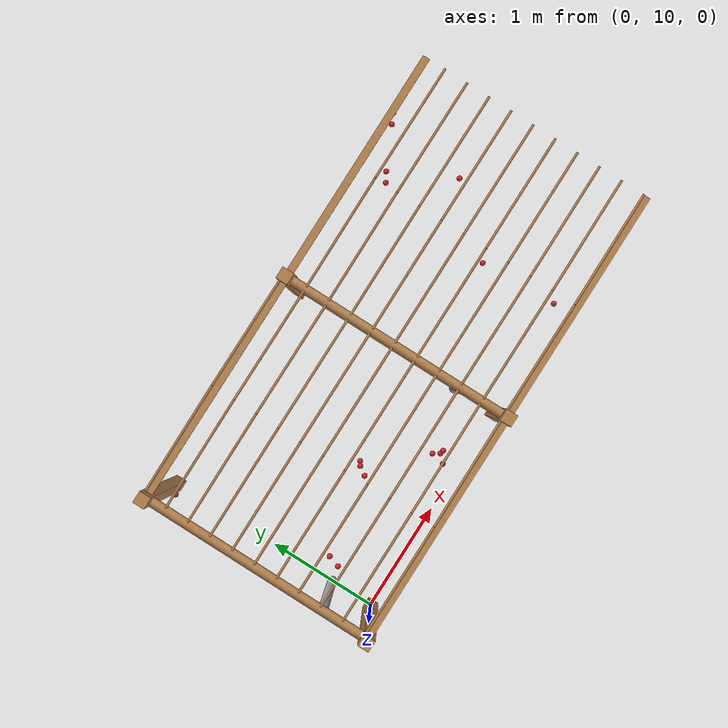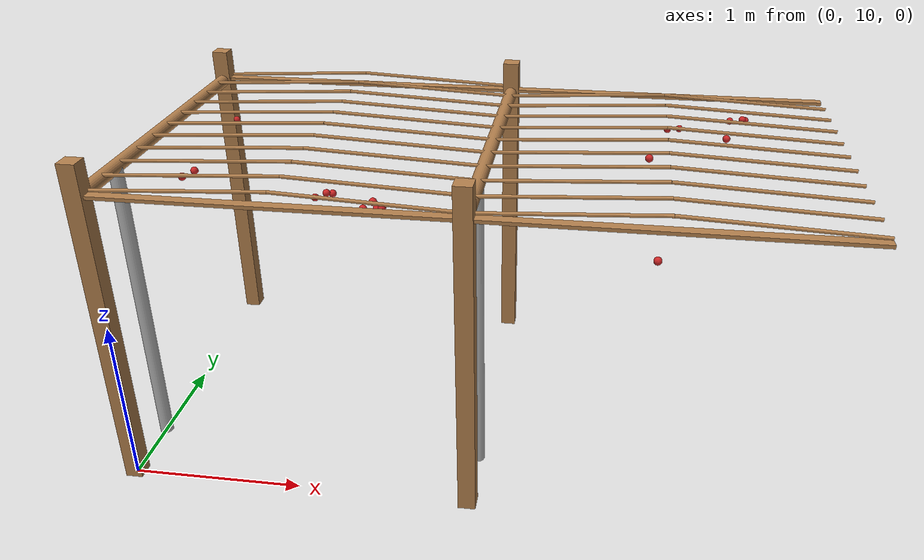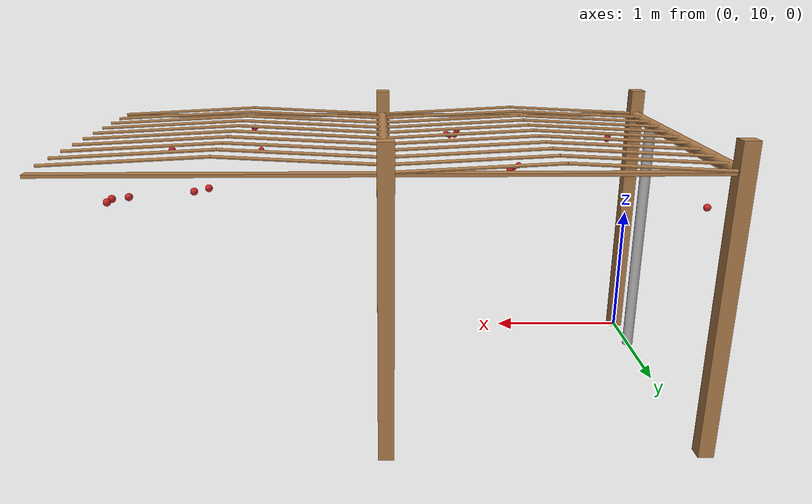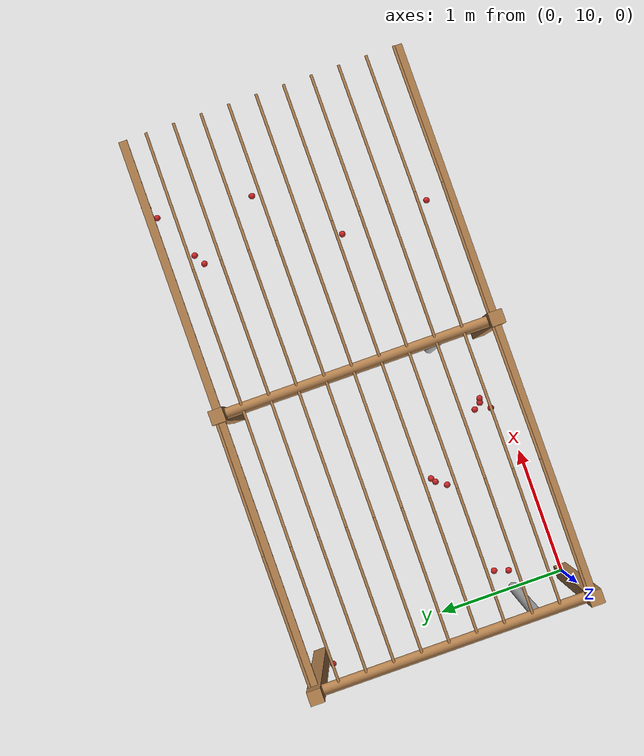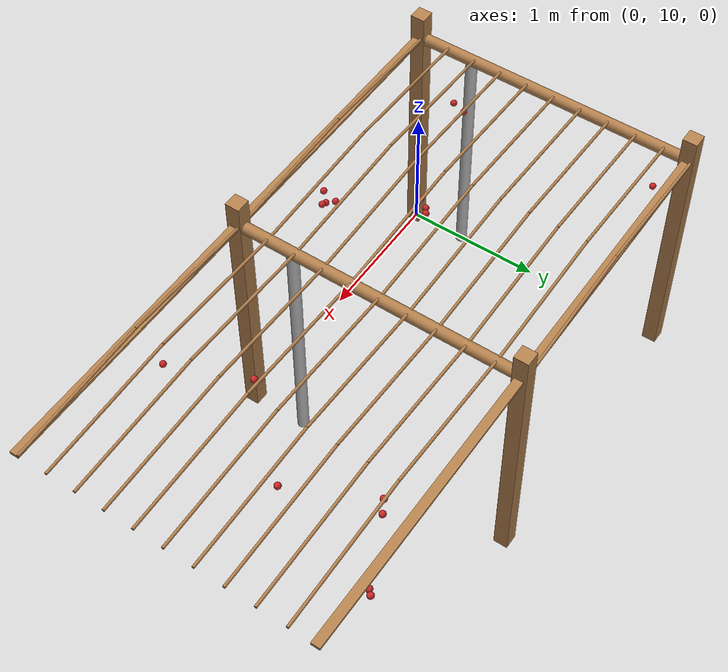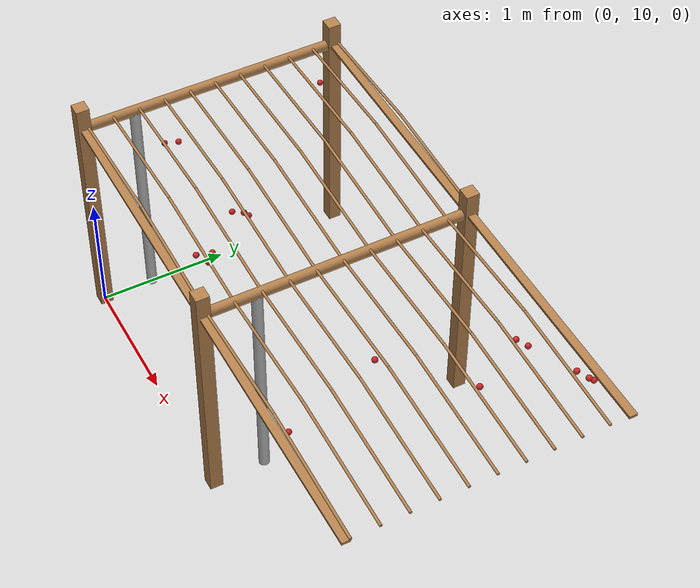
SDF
<sdf version="1.4">
 <model name="pergola">
  <include><name>post_5</name><pose>0.0 10.0 0 0 0 0</pose><uri>model://post</uri></include>
  <include><name>post_6</name><pose>0.0 12.0 0 0 0 0</pose><uri>model://post</uri></include>
  <include><name>post_16</name><pose>2.0 10.0 0 0 0 0</pose><uri>model://post</uri></include>
  <include><name>post_17</name><pose>2.0 12.0 0 0 0 0</pose><uri>model://post</uri></include>
  <link name="beam_5">
   <pose>1.0 10.0 1.81 0 0 0</pose>
   <collision name="collision"><geometry><box><size>2.0 0.06 0.02</size></box></geometry></collision>
   <visual name="visual">
    <geometry><box><size>2.0 0.06 0.02</size></box></geometry>
    <material><script><name>Gazebo/Wood</name></script></material>
   </visual>
   <inertial>
    <mass>5</mass>
    <inertia>
     <ixx>0.0016666666666666668</ixx>
     <ixy>0.0</ixy>
     <ixz>0.0</ixz>
     <iyy>1.6681666666666664</iyy>
     <iyz>0.0</iyz>
     <izz>1.6668333333333332</izz>
    </inertia>
   </inertial>
  </link>
  <link name="beam_6">
   <pose>1.0 12.0 1.81 0 0 0</pose>
   <collision name="collision"><geometry><box><size>2.0 0.06 0.02</size></box></geometry></collision>
   <visual name="visual">
    <geometry><box><size>2.0 0.06 0.02</size></box></geometry>
    <material><script><name>Gazebo/Wood</name></script></material>
   </visual>
   <inertial>
    <mass>5</mass>
    <inertia>
     <ixx>0.0016666666666666668</ixx>
     <ixy>0.0</ixy>
     <ixz>0.0</ixz>
     <iyy>1.6681666666666664</iyy>
     <iyz>0.0</iyz>
     <izz>1.6668333333333332</izz>
    </inertia>
   </inertial>
  </link>
  <link name="beam_16">
   <pose>3.0 10.0 1.81 0 0 0</pose>
   <collision name="collision"><geometry><box><size>2.0 0.06 0.02</size></box></geometry></collision>
   <visual name="visual">
    <geometry><box><size>2.0 0.06 0.02</size></box></geometry>
    <material><script><name>Gazebo/Wood</name></script></material>
   </visual>
   <inertial>
    <mass>5</mass>
    <inertia>
     <ixx>0.0016666666666666668</ixx>
     <ixy>0.0</ixy>
     <ixz>0.0</ixz>
     <iyy>1.6681666666666664</iyy>
     <iyz>0.0</iyz>
     <izz>1.6668333333333332</izz>
    </inertia>
   </inertial>
  </link>
  <link name="beam_17">
   <pose>3.0 12.0 1.81 0 0 0</pose>
   <collision name="collision"><geometry><box><size>2.0 0.06 0.02</size></box></geometry></collision>
   <visual name="visual">
    <geometry><box><size>2.0 0.06 0.02</size></box></geometry>
    <material><script><name>Gazebo/Wood</name></script></material>
   </visual>
   <inertial>
    <mass>5</mass>
    <inertia>
     <ixx>0.0016666666666666668</ixx>
     <ixy>0.0</ixy>
     <ixz>0.0</ixz>
     <iyy>1.6681666666666664</iyy>
     <iyz>0.0</iyz>
     <izz>1.6668333333333332</izz>
    </inertia>
   </inertial>
  </link>
  <include><name>tree_5</name><pose>0.0 10.4 0 0 0 0</pose><uri>model://tree_trunk</uri></include>
  <include><name>tree_15</name><pose>2.0 10.4 0 0 0 0</pose><uri>model://tree_trunk</uri></include>
  <link name="baseBranch_5">
   <pose>0.0 11.0 1.8 1.5707963267948966 0 0</pose>
   <collision name="collision">
    <geometry><cylinder><radius>0.04</radius><length>1.94</length></cylinder></geometry>
   </collision>
   <visual name="visual">
    <geometry><cylinder><radius>0.04</radius><length>1.94</length></cylinder></geometry>
    <material><script><name>Gazebo/WoodFloor</name></script></material>
   </visual>
   <inertial>
    <mass>10</mass>
    <inertia>
     <ixx>3.140333333333333</ixx>
     <ixy>0.0</ixy>
     <ixz>0.0</ixz>
     <iyy>3.140333333333333</iyy>
     <iyz>0.0</iyz>
     <izz>0.008</izz>
    </inertia>
   </inertial>
  </link>
  <link name="baseBranch_15">
   <pose>2.0 11.0 1.8 1.5707963267948966 0 0</pose>
   <collision name="collision">
    <geometry><cylinder><radius>0.04</radius><length>1.94</length></cylinder></geometry>
   </collision>
   <visual name="visual">
    <geometry><cylinder><radius>0.04</radius><length>1.94</length></cylinder></geometry>
    <material><script><name>Gazebo/WoodFloor</name></script></material>
   </visual>
   <inertial>
    <mass>10</mass>
    <inertia>
     <ixx>3.140333333333333</ixx>
     <ixy>0.0</ixy>
     <ixz>0.0</ixz>
     <iyy>3.140333333333333</iyy>
     <iyz>0.0</iyz>
     <izz>0.008</izz>
    </inertia>
   </inertial>
  </link>
  <link name="vine_100">
   <pose>0.5 10.03 1.85 0 1.5208379310729538 0</pose>
   <collision name="collision">
    <geometry><cylinder><radius>0.01</radius><length>1.0012492197250393</length></cylinder></geometry>
   </collision>
   <visual name="visual">
    <geometry><cylinder><radius>0.01</radius><length>1.0012492197250393</length></cylinder></geometry>
    <material><script><name>Gazebo/WoodFloor</name></script></material>
   </visual>
   <inertial>
    <mass>5</mass>
    <inertia>
     <ixx>0.41783333333333345</ixx>
     <ixy>0.0</ixy>
     <ixz>0.0</ixz>
     <iyy>0.41783333333333345</iyy>
     <iyz>0.0</iyz>
     <izz>0.00025</izz>
    </inertia>
   </inertial>
  </link>
  <link name="vine_101">
   <pose>1.5 10.03 1.85 0 -1.5208379310729538 0</pose>
   <collision name="collision">
    <geometry><cylinder><radius>0.01</radius><length>1.0012492197250393</length></cylinder></geometry>
   </collision>
   <visual name="visual">
    <geometry><cylinder><radius>0.01</radius><length>1.0012492197250393</length></cylinder></geometry>
    <material><script><name>Gazebo/WoodFloor</name></script></material>
   </visual>
   <inertial>
    <mass>5</mass>
    <inertia>
     <ixx>0.41783333333333345</ixx>
     <ixy>0.0</ixy>
     <ixz>0.0</ixz>
     <iyy>0.41783333333333345</iyy>
     <iyz>0.0</iyz>
     <izz>0.00025</izz>
    </inertia>
   </inertial>
  </link>
  <link name="vine_102">
   <pose>0.5 10.23 1.85 0 1.5208379310729538 0</pose>
   <collision name="collision">
    <geometry><cylinder><radius>0.01</radius><length>1.0012492197250393</length></cylinder></geometry>
   </collision>
   <visual name="visual">
    <geometry><cylinder><radius>0.01</radius><length>1.0012492197250393</length></cylinder></geometry>
    <material><script><name>Gazebo/WoodFloor</name></script></material>
   </visual>
   <inertial>
    <mass>5</mass>
    <inertia>
     <ixx>0.41783333333333345</ixx>
     <ixy>0.0</ixy>
     <ixz>0.0</ixz>
     <iyy>0.41783333333333345</iyy>
     <iyz>0.0</iyz>
     <izz>0.00025</izz>
    </inertia>
   </inertial>
  </link>
  <link name="vine_103">
   <pose>1.5 10.23 1.85 0 -1.5208379310729538 0</pose>
   <collision name="collision">
    <geometry><cylinder><radius>0.01</radius><length>1.0012492197250393</length></cylinder></geometry>
   </collision>
   <visual name="visual">
    <geometry><cylinder><radius>0.01</radius><length>1.0012492197250393</length></cylinder></geometry>
    <material><script><name>Gazebo/WoodFloor</name></script></material>
   </visual>
   <inertial>
    <mass>5</mass>
    <inertia>
     <ixx>0.41783333333333345</ixx>
     <ixy>0.0</ixy>
     <ixz>0.0</ixz>
     <iyy>0.41783333333333345</iyy>
     <iyz>0.0</iyz>
     <izz>0.00025</izz>
    </inertia>
   </inertial>
  </link>
  <link name="vine_104">
   <pose>0.5 10.43 1.85 0 1.5208379310729538 0</pose>
   <collision name="collision">
    <geometry><cylinder><radius>0.01</radius><length>1.0012492197250393</length></cylinder></geometry>
   </collision>
   <visual name="visual">
    <geometry><cylinder><radius>0.01</radius><length>1.0012492197250393</length></cylinder></geometry>
    <material><script><name>Gazebo/WoodFloor</name></script></material>
   </visual>
   <inertial>
    <mass>5</mass>
    <inertia>
     <ixx>0.41783333333333345</ixx>
     <ixy>0.0</ixy>
     <ixz>0.0</ixz>
     <iyy>0.41783333333333345</iyy>
     <iyz>0.0</iyz>
     <izz>0.00025</izz>
    </inertia>
   </inertial>
  </link>
  <link name="vine_105">
   <pose>1.5 10.43 1.85 0 -1.5208379310729538 0</pose>
   <collision name="collision">
    <geometry><cylinder><radius>0.01</radius><length>1.0012492197250393</length></cylinder></geometry>
   </collision>
   <visual name="visual">
    <geometry><cylinder><radius>0.01</radius><length>1.0012492197250393</length></cylinder></geometry>
    <material><script><name>Gazebo/WoodFloor</name></script></material>
   </visual>
   <inertial>
    <mass>5</mass>
    <inertia>
     <ixx>0.41783333333333345</ixx>
     <ixy>0.0</ixy>
     <ixz>0.0</ixz>
     <iyy>0.41783333333333345</iyy>
     <iyz>0.0</iyz>
     <izz>0.00025</izz>
    </inertia>
   </inertial>
  </link>
  <link name="vine_106">
   <pose>0.5 10.63 1.85 0 1.5208379310729538 0</pose>
   <collision name="collision">
    <geometry><cylinder><radius>0.01</radius><length>1.0012492197250393</length></cylinder></geometry>
   </collision>
   <visual name="visual">
    <geometry><cylinder><radius>0.01</radius><length>1.0012492197250393</length></cylinder></geometry>
    <material><script><name>Gazebo/WoodFloor</name></script></material>
   </visual>
   <inertial>
    <mass>5</mass>
    <inertia>
     <ixx>0.41783333333333345</ixx>
     <ixy>0.0</ixy>
     <ixz>0.0</ixz>
     <iyy>0.41783333333333345</iyy>
     <iyz>0.0</iyz>
     <izz>0.00025</izz>
    </inertia>
   </inertial>
  </link>
  <link name="vine_107">
   <pose>1.5 10.63 1.85 0 -1.5208379310729538 0</pose>
   <collision name="collision">
    <geometry><cylinder><radius>0.01</radius><length>1.0012492197250393</length></cylinder></geometry>
   </collision>
   <visual name="visual">
    <geometry><cylinder><radius>0.01</radius><length>1.0012492197250393</length></cylinder></geometry>
    <material><script><name>Gazebo/WoodFloor</name></script></material>
   </visual>
   <inertial>
    <mass>5</mass>
    <inertia>
     <ixx>0.41783333333333345</ixx>
     <ixy>0.0</ixy>
     <ixz>0.0</ixz>
     <iyy>0.41783333333333345</iyy>
     <iyz>0.0</iyz>
     <izz>0.00025</izz>
    </inertia>
   </inertial>
  </link>
  <link name="vine_108">
   <pose>0.5 10.83 1.85 0 1.5208379310729538 0</pose>
   <collision name="collision">
    <geometry><cylinder><radius>0.01</radius><length>1.0012492197250393</length></cylinder></geometry>
   </collision>
   <visual name="visual">
    <geometry><cylinder><radius>0.01</radius><length>1.0012492197250393</length></cylinder></geometry>
    <material><script><name>Gazebo/WoodFloor</name></script></material>
   </visual>
   <inertial>
    <mass>5</mass>
    <inertia>
     <ixx>0.41783333333333345</ixx>
     <ixy>0.0</ixy>
     <ixz>0.0</ixz>
     <iyy>0.41783333333333345</iyy>
     <iyz>0.0</iyz>
     <izz>0.00025</izz>
    </inertia>
   </inertial>
  </link>
  <link name="vine_109">
   <pose>1.5 10.83 1.85 0 -1.5208379310729538 0</pose>
   <collision name="collision">
    <geometry><cylinder><radius>0.01</radius><length>1.0012492197250393</length></cylinder></geometry>
   </collision>
   <visual name="visual">
    <geometry><cylinder><radius>0.01</radius><length>1.0012492197250393</length></cylinder></geometry>
    <material><script><name>Gazebo/WoodFloor</name></script></material>
   </visual>
   <inertial>
    <mass>5</mass>
    <inertia>
     <ixx>0.41783333333333345</ixx>
     <ixy>0.0</ixy>
     <ixz>0.0</ixz>
     <iyy>0.41783333333333345</iyy>
     <iyz>0.0</iyz>
     <izz>0.00025</izz>
    </inertia>
   </inertial>
  </link>
  <link name="vine_110">
   <pose>0.5 11.03 1.85 0 1.5208379310729538 0</pose>
   <collision name="collision">
    <geometry><cylinder><radius>0.01</radius><length>1.0012492197250393</length></cylinder></geometry>
   </collision>
   <visual name="visual">
    <geometry><cylinder><radius>0.01</radius><length>1.0012492197250393</length></cylinder></geometry>
    <material><script><name>Gazebo/WoodFloor</name></script></material>
   </visual>
   <inertial>
    <mass>5</mass>
    <inertia>
     <ixx>0.41783333333333345</ixx>
     <ixy>0.0</ixy>
     <ixz>0.0</ixz>
     <iyy>0.41783333333333345</iyy>
     <iyz>0.0</iyz>
     <izz>0.00025</izz>
    </inertia>
   </inertial>
  </link>
  <link name="vine_111">
   <pose>1.5 11.03 1.85 0 -1.5208379310729538 0</pose>
   <collision name="collision">
    <geometry><cylinder><radius>0.01</radius><length>1.0012492197250393</length></cylinder></geometry>
   </collision>
   <visual name="visual">
    <geometry><cylinder><radius>0.01</radius><length>1.0012492197250393</length></cylinder></geometry>
    <material><script><name>Gazebo/WoodFloor</name></script></material>
   </visual>
   <inertial>
    <mass>5</mass>
    <inertia>
     <ixx>0.41783333333333345</ixx>
     <ixy>0.0</ixy>
     <ixz>0.0</ixz>
     <iyy>0.41783333333333345</iyy>
     <iyz>0.0</iyz>
     <izz>0.00025</izz>
    </inertia>
   </inertial>
  </link>
  <link name="vine_112">
   <pose>0.5 11.23 1.85 0 1.5208379310729538 0</pose>
   <collision name="collision">
    <geometry><cylinder><radius>0.01</radius><length>1.0012492197250393</length></cylinder></geometry>
   </collision>
   <visual name="visual">
    <geometry><cylinder><radius>0.01</radius><length>1.0012492197250393</length></cylinder></geometry>
    <material><script><name>Gazebo/WoodFloor</name></script></material>
   </visual>
   <inertial>
    <mass>5</mass>
    <inertia>
     <ixx>0.41783333333333345</ixx>
     <ixy>0.0</ixy>
     <ixz>0.0</ixz>
     <iyy>0.41783333333333345</iyy>
     <iyz>0.0</iyz>
     <izz>0.00025</izz>
    </inertia>
   </inertial>
  </link>
  <link name="vine_113">
   <pose>1.5 11.23 1.85 0 -1.5208379310729538 0</pose>
   <collision name="collision">
    <geometry><cylinder><radius>0.01</radius><length>1.0012492197250393</length></cylinder></geometry>
   </collision>
   <visual name="visual">
    <geometry><cylinder><radius>0.01</radius><length>1.0012492197250393</length></cylinder></geometry>
    <material><script><name>Gazebo/WoodFloor</name></script></material>
   </visual>
   <inertial>
    <mass>5</mass>
    <inertia>
     <ixx>0.41783333333333345</ixx>
     <ixy>0.0</ixy>
     <ixz>0.0</ixz>
     <iyy>0.41783333333333345</iyy>
     <iyz>0.0</iyz>
     <izz>0.00025</izz>
    </inertia>
   </inertial>
  </link>
  <link name="vine_114">
   <pose>0.5 11.43 1.85 0 1.5208379310729538 0</pose>
   <collision name="collision">
    <geometry><cylinder><radius>0.01</radius><length>1.0012492197250393</length></cylinder></geometry>
   </collision>
   <visual name="visual">
    <geometry><cylinder><radius>0.01</radius><length>1.0012492197250393</length></cylinder></geometry>
    <material><script><name>Gazebo/WoodFloor</name></script></material>
   </visual>
   <inertial>
    <mass>5</mass>
    <inertia>
     <ixx>0.41783333333333345</ixx>
     <ixy>0.0</ixy>
     <ixz>0.0</ixz>
     <iyy>0.41783333333333345</iyy>
     <iyz>0.0</iyz>
     <izz>0.00025</izz>
    </inertia>
   </inertial>
  </link>
  <link name="vine_115">
   <pose>1.5 11.43 1.85 0 -1.5208379310729538 0</pose>
   <collision name="collision">
    <geometry><cylinder><radius>0.01</radius><length>1.0012492197250393</length></cylinder></geometry>
   </collision>
   <visual name="visual">
    <geometry><cylinder><radius>0.01</radius><length>1.0012492197250393</length></cylinder></geometry>
    <material><script><name>Gazebo/WoodFloor</name></script></material>
   </visual>
   <inertial>
    <mass>5</mass>
    <inertia>
     <ixx>0.41783333333333345</ixx>
     <ixy>0.0</ixy>
     <ixz>0.0</ixz>
     <iyy>0.41783333333333345</iyy>
     <iyz>0.0</iyz>
     <izz>0.00025</izz>
    </inertia>
   </inertial>
  </link>
  <link name="vine_116">
   <pose>0.5 11.63 1.85 0 1.5208379310729538 0</pose>
   <collision name="collision">
    <geometry><cylinder><radius>0.01</radius><length>1.0012492197250393</length></cylinder></geometry>
   </collision>
   <visual name="visual">
    <geometry><cylinder><radius>0.01</radius><length>1.0012492197250393</length></cylinder></geometry>
    <material><script><name>Gazebo/WoodFloor</name></script></material>
   </visual>
   <inertial>
    <mass>5</mass>
    <inertia>
     <ixx>0.41783333333333345</ixx>
     <ixy>0.0</ixy>
     <ixz>0.0</ixz>
     <iyy>0.41783333333333345</iyy>
     <iyz>0.0</iyz>
     <izz>0.00025</izz>
    </inertia>
   </inertial>
  </link>
  <link name="vine_117">
   <pose>1.5 11.63 1.85 0 -1.5208379310729538 0</pose>
   <collision name="collision">
    <geometry><cylinder><radius>0.01</radius><length>1.0012492197250393</length></cylinder></geometry>
   </collision>
   <visual name="visual">
    <geometry><cylinder><radius>0.01</radius><length>1.0012492197250393</length></cylinder></geometry>
    <material><script><name>Gazebo/WoodFloor</name></script></material>
   </visual>
   <inertial>
    <mass>5</mass>
    <inertia>
     <ixx>0.41783333333333345</ixx>
     <ixy>0.0</ixy>
     <ixz>0.0</ixz>
     <iyy>0.41783333333333345</iyy>
     <iyz>0.0</iyz>
     <izz>0.00025</izz>
    </inertia>
   </inertial>
  </link>
  <link name="vine_118">
   <pose>0.5 11.83 1.85 0 1.5208379310729538 0</pose>
   <collision name="collision">
    <geometry><cylinder><radius>0.01</radius><length>1.0012492197250393</length></cylinder></geometry>
   </collision>
   <visual name="visual">
    <geometry><cylinder><radius>0.01</radius><length>1.0012492197250393</length></cylinder></geometry>
    <material><script><name>Gazebo/WoodFloor</name></script></material>
   </visual>
   <inertial>
    <mass>5</mass>
    <inertia>
     <ixx>0.41783333333333345</ixx>
     <ixy>0.0</ixy>
     <ixz>0.0</ixz>
     <iyy>0.41783333333333345</iyy>
     <iyz>0.0</iyz>
     <izz>0.00025</izz>
    </inertia>
   </inertial>
  </link>
  <link name="vine_119">
   <pose>1.5 11.83 1.85 0 -1.5208379310729538 0</pose>
   <collision name="collision">
    <geometry><cylinder><radius>0.01</radius><length>1.0012492197250393</length></cylinder></geometry>
   </collision>
   <visual name="visual">
    <geometry><cylinder><radius>0.01</radius><length>1.0012492197250393</length></cylinder></geometry>
    <material><script><name>Gazebo/WoodFloor</name></script></material>
   </visual>
   <inertial>
    <mass>5</mass>
    <inertia>
     <ixx>0.41783333333333345</ixx>
     <ixy>0.0</ixy>
     <ixz>0.0</ixz>
     <iyy>0.41783333333333345</iyy>
     <iyz>0.0</iyz>
     <izz>0.00025</izz>
    </inertia>
   </inertial>
  </link>
  <link name="vine_120">
   <pose>0.5 12.03 1.85 0 1.5208379310729538 0</pose>
   <collision name="collision">
    <geometry><cylinder><radius>0.01</radius><length>1.0012492197250393</length></cylinder></geometry>
   </collision>
   <visual name="visual">
    <geometry><cylinder><radius>0.01</radius><length>1.0012492197250393</length></cylinder></geometry>
    <material><script><name>Gazebo/WoodFloor</name></script></material>
   </visual>
   <inertial>
    <mass>5</mass>
    <inertia>
     <ixx>0.41783333333333345</ixx>
     <ixy>0.0</ixy>
     <ixz>0.0</ixz>
     <iyy>0.41783333333333345</iyy>
     <iyz>0.0</iyz>
     <izz>0.00025</izz>
    </inertia>
   </inertial>
  </link>
  <link name="vine_121">
   <pose>1.5 12.03 1.85 0 -1.5208379310729538 0</pose>
   <collision name="collision">
    <geometry><cylinder><radius>0.01</radius><length>1.0012492197250393</length></cylinder></geometry>
   </collision>
   <visual name="visual">
    <geometry><cylinder><radius>0.01</radius><length>1.0012492197250393</length></cylinder></geometry>
    <material><script><name>Gazebo/WoodFloor</name></script></material>
   </visual>
   <inertial>
    <mass>5</mass>
    <inertia>
     <ixx>0.41783333333333345</ixx>
     <ixy>0.0</ixy>
     <ixz>0.0</ixz>
     <iyy>0.41783333333333345</iyy>
     <iyz>0.0</iyz>
     <izz>0.00025</izz>
    </inertia>
   </inertial>
  </link>
  <link name="vine_300">
   <pose>2.5 10.03 1.85 0 1.5208379310729538 0</pose>
   <collision name="collision">
    <geometry><cylinder><radius>0.01</radius><length>1.0012492197250393</length></cylinder></geometry>
   </collision>
   <visual name="visual">
    <geometry><cylinder><radius>0.01</radius><length>1.0012492197250393</length></cylinder></geometry>
    <material><script><name>Gazebo/WoodFloor</name></script></material>
   </visual>
   <inertial>
    <mass>5</mass>
    <inertia>
     <ixx>0.41783333333333345</ixx>
     <ixy>0.0</ixy>
     <ixz>0.0</ixz>
     <iyy>0.41783333333333345</iyy>
     <iyz>0.0</iyz>
     <izz>0.00025</izz>
    </inertia>
   </inertial>
  </link>
  <link name="vine_301">
   <pose>3.5 10.03 1.85 0 -1.5208379310729538 0</pose>
   <collision name="collision">
    <geometry><cylinder><radius>0.01</radius><length>1.0012492197250393</length></cylinder></geometry>
   </collision>
   <visual name="visual">
    <geometry><cylinder><radius>0.01</radius><length>1.0012492197250393</length></cylinder></geometry>
    <material><script><name>Gazebo/WoodFloor</name></script></material>
   </visual>
   <inertial>
    <mass>5</mass>
    <inertia>
     <ixx>0.41783333333333345</ixx>
     <ixy>0.0</ixy>
     <ixz>0.0</ixz>
     <iyy>0.41783333333333345</iyy>
     <iyz>0.0</iyz>
     <izz>0.00025</izz>
    </inertia>
   </inertial>
  </link>
  <link name="vine_302">
   <pose>2.5 10.23 1.85 0 1.5208379310729538 0</pose>
   <collision name="collision">
    <geometry><cylinder><radius>0.01</radius><length>1.0012492197250393</length></cylinder></geometry>
   </collision>
   <visual name="visual">
    <geometry><cylinder><radius>0.01</radius><length>1.0012492197250393</length></cylinder></geometry>
    <material><script><name>Gazebo/WoodFloor</name></script></material>
   </visual>
   <inertial>
    <mass>5</mass>
    <inertia>
     <ixx>0.41783333333333345</ixx>
     <ixy>0.0</ixy>
     <ixz>0.0</ixz>
     <iyy>0.41783333333333345</iyy>
     <iyz>0.0</iyz>
     <izz>0.00025</izz>
    </inertia>
   </inertial>
  </link>
  <link name="vine_303">
   <pose>3.5 10.23 1.85 0 -1.5208379310729538 0</pose>
   <collision name="collision">
    <geometry><cylinder><radius>0.01</radius><length>1.0012492197250393</length></cylinder></geometry>
   </collision>
   <visual name="visual">
    <geometry><cylinder><radius>0.01</radius><length>1.0012492197250393</length></cylinder></geometry>
    <material><script><name>Gazebo/WoodFloor</name></script></material>
   </visual>
   <inertial>
    <mass>5</mass>
    <inertia>
     <ixx>0.41783333333333345</ixx>
     <ixy>0.0</ixy>
     <ixz>0.0</ixz>
     <iyy>0.41783333333333345</iyy>
     <iyz>0.0</iyz>
     <izz>0.00025</izz>
    </inertia>
   </inertial>
  </link>
  <link name="vine_304">
   <pose>2.5 10.43 1.85 0 1.5208379310729538 0</pose>
   <collision name="collision">
    <geometry><cylinder><radius>0.01</radius><length>1.0012492197250393</length></cylinder></geometry>
   </collision>
   <visual name="visual">
    <geometry><cylinder><radius>0.01</radius><length>1.0012492197250393</length></cylinder></geometry>
    <material><script><name>Gazebo/WoodFloor</name></script></material>
   </visual>
   <inertial>
    <mass>5</mass>
    <inertia>
     <ixx>0.41783333333333345</ixx>
     <ixy>0.0</ixy>
     <ixz>0.0</ixz>
     <iyy>0.41783333333333345</iyy>
     <iyz>0.0</iyz>
     <izz>0.00025</izz>
    </inertia>
   </inertial>
  </link>
  <link name="vine_305">
   <pose>3.5 10.43 1.85 0 -1.5208379310729538 0</pose>
   <collision name="collision">
    <geometry><cylinder><radius>0.01</radius><length>1.0012492197250393</length></cylinder></geometry>
   </collision>
   <visual name="visual">
    <geometry><cylinder><radius>0.01</radius><length>1.0012492197250393</length></cylinder></geometry>
    <material><script><name>Gazebo/WoodFloor</name></script></material>
   </visual>
   <inertial>
    <mass>5</mass>
    <inertia>
     <ixx>0.41783333333333345</ixx>
     <ixy>0.0</ixy>
     <ixz>0.0</ixz>
     <iyy>0.41783333333333345</iyy>
     <iyz>0.0</iyz>
     <izz>0.00025</izz>
    </inertia>
   </inertial>
  </link>
  <link name="vine_306">
   <pose>2.5 10.63 1.85 0 1.5208379310729538 0</pose>
   <collision name="collision">
    <geometry><cylinder><radius>0.01</radius><length>1.0012492197250393</length></cylinder></geometry>
   </collision>
   <visual name="visual">
    <geometry><cylinder><radius>0.01</radius><length>1.0012492197250393</length></cylinder></geometry>
    <material><script><name>Gazebo/WoodFloor</name></script></material>
   </visual>
   <inertial>
    <mass>5</mass>
    <inertia>
     <ixx>0.41783333333333345</ixx>
     <ixy>0.0</ixy>
     <ixz>0.0</ixz>
     <iyy>0.41783333333333345</iyy>
     <iyz>0.0</iyz>
     <izz>0.00025</izz>
    </inertia>
   </inertial>
  </link>
  <link name="vine_307">
   <pose>3.5 10.63 1.85 0 -1.5208379310729538 0</pose>
   <collision name="collision">
    <geometry><cylinder><radius>0.01</radius><length>1.0012492197250393</length></cylinder></geometry>
   </collision>
   <visual name="visual">
    <geometry><cylinder><radius>0.01</radius><length>1.0012492197250393</length></cylinder></geometry>
    <material><script><name>Gazebo/WoodFloor</name></script></material>
   </visual>
   <inertial>
    <mass>5</mass>
    <inertia>
     <ixx>0.41783333333333345</ixx>
     <ixy>0.0</ixy>
     <ixz>0.0</ixz>
     <iyy>0.41783333333333345</iyy>
     <iyz>0.0</iyz>
     <izz>0.00025</izz>
    </inertia>
   </inertial>
  </link>
  <link name="vine_308">
   <pose>2.5 10.83 1.85 0 1.5208379310729538 0</pose>
   <collision name="collision">
    <geometry><cylinder><radius>0.01</radius><length>1.0012492197250393</length></cylinder></geometry>
   </collision>
   <visual name="visual">
    <geometry><cylinder><radius>0.01</radius><length>1.0012492197250393</length></cylinder></geometry>
    <material><script><name>Gazebo/WoodFloor</name></script></material>
   </visual>
   <inertial>
    <mass>5</mass>
    <inertia>
     <ixx>0.41783333333333345</ixx>
     <ixy>0.0</ixy>
     <ixz>0.0</ixz>
     <iyy>0.41783333333333345</iyy>
     <iyz>0.0</iyz>
     <izz>0.00025</izz>
    </inertia>
   </inertial>
  </link>
  <link name="vine_309">
   <pose>3.5 10.83 1.85 0 -1.5208379310729538 0</pose>
   <collision name="collision">
    <geometry><cylinder><radius>0.01</radius><length>1.0012492197250393</length></cylinder></geometry>
   </collision>
   <visual name="visual">
    <geometry><cylinder><radius>0.01</radius><length>1.0012492197250393</length></cylinder></geometry>
    <material><script><name>Gazebo/WoodFloor</name></script></material>
   </visual>
   <inertial>
    <mass>5</mass>
    <inertia>
     <ixx>0.41783333333333345</ixx>
     <ixy>0.0</ixy>
     <ixz>0.0</ixz>
     <iyy>0.41783333333333345</iyy>
     <iyz>0.0</iyz>
     <izz>0.00025</izz>
    </inertia>
   </inertial>
  </link>
  <link name="vine_310">
   <pose>2.5 11.03 1.85 0 1.5208379310729538 0</pose>
   <collision name="collision">
    <geometry><cylinder><radius>0.01</radius><length>1.0012492197250393</length></cylinder></geometry>
   </collision>
   <visual name="visual">
    <geometry><cylinder><radius>0.01</radius><length>1.0012492197250393</length></cylinder></geometry>
    <material><script><name>Gazebo/WoodFloor</name></script></material>
   </visual>
   <inertial>
    <mass>5</mass>
    <inertia>
     <ixx>0.41783333333333345</ixx>
     <ixy>0.0</ixy>
     <ixz>0.0</ixz>
     <iyy>0.41783333333333345</iyy>
     <iyz>0.0</iyz>
     <izz>0.00025</izz>
    </inertia>
   </inertial>
  </link>
  <link name="vine_311">
   <pose>3.5 11.03 1.85 0 -1.5208379310729538 0</pose>
   <collision name="collision">
    <geometry><cylinder><radius>0.01</radius><length>1.0012492197250393</length></cylinder></geometry>
   </collision>
   <visual name="visual">
    <geometry><cylinder><radius>0.01</radius><length>1.0012492197250393</length></cylinder></geometry>
    <material><script><name>Gazebo/WoodFloor</name></script></material>
   </visual>
   <inertial>
    <mass>5</mass>
    <inertia>
     <ixx>0.41783333333333345</ixx>
     <ixy>0.0</ixy>
     <ixz>0.0</ixz>
     <iyy>0.41783333333333345</iyy>
     <iyz>0.0</iyz>
     <izz>0.00025</izz>
    </inertia>
   </inertial>
  </link>
  <link name="vine_312">
   <pose>2.5 11.23 1.85 0 1.5208379310729538 0</pose>
   <collision name="collision">
    <geometry><cylinder><radius>0.01</radius><length>1.0012492197250393</length></cylinder></geometry>
   </collision>
   <visual name="visual">
    <geometry><cylinder><radius>0.01</radius><length>1.0012492197250393</length></cylinder></geometry>
    <material><script><name>Gazebo/WoodFloor</name></script></material>
   </visual>
   <inertial>
    <mass>5</mass>
    <inertia>
     <ixx>0.41783333333333345</ixx>
     <ixy>0.0</ixy>
     <ixz>0.0</ixz>
     <iyy>0.41783333333333345</iyy>
     <iyz>0.0</iyz>
     <izz>0.00025</izz>
    </inertia>
   </inertial>
  </link>
  <link name="vine_313">
   <pose>3.5 11.23 1.85 0 -1.5208379310729538 0</pose>
   <collision name="collision">
    <geometry><cylinder><radius>0.01</radius><length>1.0012492197250393</length></cylinder></geometry>
   </collision>
   <visual name="visual">
    <geometry><cylinder><radius>0.01</radius><length>1.0012492197250393</length></cylinder></geometry>
    <material><script><name>Gazebo/WoodFloor</name></script></material>
   </visual>
   <inertial>
    <mass>5</mass>
    <inertia>
     <ixx>0.41783333333333345</ixx>
     <ixy>0.0</ixy>
     <ixz>0.0</ixz>
     <iyy>0.41783333333333345</iyy>
     <iyz>0.0</iyz>
     <izz>0.00025</izz>
    </inertia>
   </inertial>
  </link>
  <link name="vine_314">
   <pose>2.5 11.43 1.85 0 1.5208379310729538 0</pose>
   <collision name="collision">
    <geometry><cylinder><radius>0.01</radius><length>1.0012492197250393</length></cylinder></geometry>
   </collision>
   <visual name="visual">
    <geometry><cylinder><radius>0.01</radius><length>1.0012492197250393</length></cylinder></geometry>
    <material><script><name>Gazebo/WoodFloor</name></script></material>
   </visual>
   <inertial>
    <mass>5</mass>
    <inertia>
     <ixx>0.41783333333333345</ixx>
     <ixy>0.0</ixy>
     <ixz>0.0</ixz>
     <iyy>0.41783333333333345</iyy>
     <iyz>0.0</iyz>
     <izz>0.00025</izz>
    </inertia>
   </inertial>
  </link>
  <link name="vine_315">
   <pose>3.5 11.43 1.85 0 -1.5208379310729538 0</pose>
   <collision name="collision">
    <geometry><cylinder><radius>0.01</radius><length>1.0012492197250393</length></cylinder></geometry>
   </collision>
   <visual name="visual">
    <geometry><cylinder><radius>0.01</radius><length>1.0012492197250393</length></cylinder></geometry>
    <material><script><name>Gazebo/WoodFloor</name></script></material>
   </visual>
   <inertial>
    <mass>5</mass>
    <inertia>
     <ixx>0.41783333333333345</ixx>
     <ixy>0.0</ixy>
     <ixz>0.0</ixz>
     <iyy>0.41783333333333345</iyy>
     <iyz>0.0</iyz>
     <izz>0.00025</izz>
    </inertia>
   </inertial>
  </link>
  <link name="vine_316">
   <pose>2.5 11.63 1.85 0 1.5208379310729538 0</pose>
   <collision name="collision">
    <geometry><cylinder><radius>0.01</radius><length>1.0012492197250393</length></cylinder></geometry>
   </collision>
   <visual name="visual">
    <geometry><cylinder><radius>0.01</radius><length>1.0012492197250393</length></cylinder></geometry>
    <material><script><name>Gazebo/WoodFloor</name></script></material>
   </visual>
   <inertial>
    <mass>5</mass>
    <inertia>
     <ixx>0.41783333333333345</ixx>
     <ixy>0.0</ixy>
     <ixz>0.0</ixz>
     <iyy>0.41783333333333345</iyy>
     <iyz>0.0</iyz>
     <izz>0.00025</izz>
    </inertia>
   </inertial>
  </link>
  <link name="vine_317">
   <pose>3.5 11.63 1.85 0 -1.5208379310729538 0</pose>
   <collision name="collision">
    <geometry><cylinder><radius>0.01</radius><length>1.0012492197250393</length></cylinder></geometry>
   </collision>
   <visual name="visual">
    <geometry><cylinder><radius>0.01</radius><length>1.0012492197250393</length></cylinder></geometry>
    <material><script><name>Gazebo/WoodFloor</name></script></material>
   </visual>
   <inertial>
    <mass>5</mass>
    <inertia>
     <ixx>0.41783333333333345</ixx>
     <ixy>0.0</ixy>
     <ixz>0.0</ixz>
     <iyy>0.41783333333333345</iyy>
     <iyz>0.0</iyz>
     <izz>0.00025</izz>
    </inertia>
   </inertial>
  </link>
  <link name="vine_318">
   <pose>2.5 11.83 1.85 0 1.5208379310729538 0</pose>
   <collision name="collision">
    <geometry><cylinder><radius>0.01</radius><length>1.0012492197250393</length></cylinder></geometry>
   </collision>
   <visual name="visual">
    <geometry><cylinder><radius>0.01</radius><length>1.0012492197250393</length></cylinder></geometry>
    <material><script><name>Gazebo/WoodFloor</name></script></material>
   </visual>
   <inertial>
    <mass>5</mass>
    <inertia>
     <ixx>0.41783333333333345</ixx>
     <ixy>0.0</ixy>
     <ixz>0.0</ixz>
     <iyy>0.41783333333333345</iyy>
     <iyz>0.0</iyz>
     <izz>0.00025</izz>
    </inertia>
   </inertial>
  </link>
  <link name="vine_319">
   <pose>3.5 11.83 1.85 0 -1.5208379310729538 0</pose>
   <collision name="collision">
    <geometry><cylinder><radius>0.01</radius><length>1.0012492197250393</length></cylinder></geometry>
   </collision>
   <visual name="visual">
    <geometry><cylinder><radius>0.01</radius><length>1.0012492197250393</length></cylinder></geometry>
    <material><script><name>Gazebo/WoodFloor</name></script></material>
   </visual>
   <inertial>
    <mass>5</mass>
    <inertia>
     <ixx>0.41783333333333345</ixx>
     <ixy>0.0</ixy>
     <ixz>0.0</ixz>
     <iyy>0.41783333333333345</iyy>
     <iyz>0.0</iyz>
     <izz>0.00025</izz>
    </inertia>
   </inertial>
  </link>
  <link name="fruit_43">
   <pose>2.8931231339231958 10.791518634576628 1.853409264692921 0 0 0</pose>
   <collision name="fruit_collision_43"><geometry><sphere><radius>0.022</radius></sphere></geometry></collision>
   <visual name="visual">
    <geometry><sphere><radius>0.022</radius></sphere></geometry>
    <material><script><name>Gazebo/Red</name></script></material>
   </visual>
   <inertial>
    <mass>0.05</mass>
    <inertia>
     <ixx>9.679999999999999e-06</ixx>
     <ixy>0.0</ixy>
     <ixz>0.0</ixz>
     <iyy>9.679999999999999e-06</iyy>
     <iyz>0.0</iyz>
     <izz>9.679999999999999e-06</izz>
    </inertia>
   </inertial>
   <sensor name="fruit_contact_43" type="contact">
    <contact><collision>fruit_collision_43</collision></contact>
   </sensor>
  </link>
  <link name="fruit_50">
   <pose>2.9501637290297644 10.149660454213041 1.5658130125940108 0 0 0</pose>
   <collision name="fruit_collision_50"><geometry><sphere><radius>0.022</radius></sphere></geometry></collision>
   <visual name="visual">
    <geometry><sphere><radius>0.022</radius></sphere></geometry>
    <material><script><name>Gazebo/Red</name></script></material>
   </visual>
   <inertial>
    <mass>0.05</mass>
    <inertia>
     <ixx>9.679999999999999e-06</ixx>
     <ixy>0.0</ixy>
     <ixz>0.0</ixz>
     <iyy>9.679999999999999e-06</iyy>
     <iyz>0.0</iyz>
     <izz>9.679999999999999e-06</izz>
    </inertia>
   </inertial>
   <sensor name="fruit_contact_50" type="contact">
    <contact><collision>fruit_collision_50</collision></contact>
   </sensor>
  </link>
  <link name="fruit_111">
   <pose>3.442782458342276 11.96023855480953 1.6743000877433873 0 0 0</pose>
   <collision name="fruit_collision_111"><geometry><sphere><radius>0.022</radius></sphere></geometry></collision>
   <visual name="visual">
    <geometry><sphere><radius>0.022</radius></sphere></geometry>
    <material><script><name>Gazebo/Red</name></script></material>
   </visual>
   <inertial>
    <mass>0.05</mass>
    <inertia>
     <ixx>9.679999999999999e-06</ixx>
     <ixy>0.0</ixy>
     <ixz>0.0</ixz>
     <iyy>9.679999999999999e-06</iyy>
     <iyz>0.0</iyz>
     <izz>9.679999999999999e-06</izz>
    </inertia>
   </inertial>
   <sensor name="fruit_contact_111" type="contact">
    <contact><collision>fruit_collision_111</collision></contact>
   </sensor>
  </link>
  <link name="fruit_155">
   <pose>0.33972766733641774 10.480319332054199 1.728338077004607 0 0 0</pose>
   <collision name="fruit_collision_155"><geometry><sphere><radius>0.022</radius></sphere></geometry></collision>
   <visual name="visual">
    <geometry><sphere><radius>0.022</radius></sphere></geometry>
    <material><script><name>Gazebo/Red</name></script></material>
   </visual>
   <inertial>
    <mass>0.05</mass>
    <inertia>
     <ixx>9.679999999999999e-06</ixx>
     <ixy>0.0</ixy>
     <ixz>0.0</ixz>
     <iyy>9.679999999999999e-06</iyy>
     <iyz>0.0</iyz>
     <izz>9.679999999999999e-06</izz>
    </inertia>
   </inertial>
   <sensor name="fruit_contact_155" type="contact">
    <contact><collision>fruit_collision_155</collision></contact>
   </sensor>
  </link>
  <link name="fruit_161">
   <pose>0.11395098909380377 11.840961430248106 1.5650743524799102 0 0 0</pose>
   <collision name="fruit_collision_161"><geometry><sphere><radius>0.022</radius></sphere></geometry></collision>
   <visual name="visual">
    <geometry><sphere><radius>0.022</radius></sphere></geometry>
    <material><script><name>Gazebo/Red</name></script></material>
   </visual>
   <inertial>
    <mass>0.05</mass>
    <inertia>
     <ixx>9.679999999999999e-06</ixx>
     <ixy>0.0</ixy>
     <ixz>0.0</ixz>
     <iyy>9.679999999999999e-06</iyy>
     <iyz>0.0</iyz>
     <izz>9.679999999999999e-06</izz>
    </inertia>
   </inertial>
   <sensor name="fruit_contact_161" type="contact">
    <contact><collision>fruit_collision_161</collision></contact>
   </sensor>
  </link>
  <link name="fruit_229">
   <pose>1.4333174928189083 10.221722998269152 1.7213422759488999 0 0 0</pose>
   <collision name="fruit_collision_229"><geometry><sphere><radius>0.022</radius></sphere></geometry></collision>
   <visual name="visual">
    <geometry><sphere><radius>0.022</radius></sphere></geometry>
    <material><script><name>Gazebo/Red</name></script></material>
   </visual>
   <inertial>
    <mass>0.05</mass>
    <inertia>
     <ixx>9.679999999999999e-06</ixx>
     <ixy>0.0</ixy>
     <ixz>0.0</ixz>
     <iyy>9.679999999999999e-06</iyy>
     <iyz>0.0</iyz>
     <izz>9.679999999999999e-06</izz>
    </inertia>
   </inertial>
   <sensor name="fruit_contact_229" type="contact">
    <contact><collision>fruit_collision_229</collision></contact>
   </sensor>
  </link>
  <link name="fruit_263">
   <pose>3.034468365005544 11.757300193378379 1.6716301239081246 0 0 0</pose>
   <collision name="fruit_collision_263"><geometry><sphere><radius>0.022</radius></sphere></geometry></collision>
   <visual name="visual">
    <geometry><sphere><radius>0.022</radius></sphere></geometry>
    <material><script><name>Gazebo/Red</name></script></material>
   </visual>
   <inertial>
    <mass>0.05</mass>
    <inertia>
     <ixx>9.679999999999999e-06</ixx>
     <ixy>0.0</ixy>
     <ixz>0.0</ixz>
     <iyy>9.679999999999999e-06</iyy>
     <iyz>0.0</iyz>
     <izz>9.679999999999999e-06</izz>
    </inertia>
   </inertial>
   <sensor name="fruit_contact_263" type="contact">
    <contact><collision>fruit_collision_263</collision></contact>
   </sensor>
  </link>
  <link name="fruit_279">
   <pose>1.0247904426332297 10.677215723138891 1.5557980117095862 0 0 0</pose>
   <collision name="fruit_collision_279"><geometry><sphere><radius>0.022</radius></sphere></geometry></collision>
   <visual name="visual">
    <geometry><sphere><radius>0.022</radius></sphere></geometry>
    <material><script><name>Gazebo/Red</name></script></material>
   </visual>
   <inertial>
    <mass>0.05</mass>
    <inertia>
     <ixx>9.679999999999999e-06</ixx>
     <ixy>0.0</ixy>
     <ixz>0.0</ixz>
     <iyy>9.679999999999999e-06</iyy>
     <iyz>0.0</iyz>
     <izz>9.679999999999999e-06</izz>
    </inertia>
   </inertial>
   <sensor name="fruit_contact_279" type="contact">
    <contact><collision>fruit_collision_279</collision></contact>
   </sensor>
  </link>
  <link name="fruit_286">
   <pose>3.3512911967084946 11.288328373626198 1.8015256516451719 0 0 0</pose>
   <collision name="fruit_collision_286"><geometry><sphere><radius>0.022</radius></sphere></geometry></collision>
   <visual name="visual">
    <geometry><sphere><radius>0.022</radius></sphere></geometry>
    <material><script><name>Gazebo/Red</name></script></material>
   </visual>
   <inertial>
    <mass>0.05</mass>
    <inertia>
     <ixx>9.679999999999999e-06</ixx>
     <ixy>0.0</ixy>
     <ixz>0.0</ixz>
     <iyy>9.679999999999999e-06</iyy>
     <iyz>0.0</iyz>
     <izz>9.679999999999999e-06</izz>
    </inertia>
   </inertial>
   <sensor name="fruit_contact_286" type="contact">
    <contact><collision>fruit_collision_286</collision></contact>
   </sensor>
  </link>
  <link name="fruit_394">
   <pose>3.11189867431106 11.802433757451501 1.6635168882383151 0 0 0</pose>
   <collision name="fruit_collision_394"><geometry><sphere><radius>0.022</radius></sphere></geometry></collision>
   <visual name="visual">
    <geometry><sphere><radius>0.022</radius></sphere></geometry>
    <material><script><name>Gazebo/Red</name></script></material>
   </visual>
   <inertial>
    <mass>0.05</mass>
    <inertia>
     <ixx>9.679999999999999e-06</ixx>
     <ixy>0.0</ixy>
     <ixz>0.0</ixz>
     <iyy>9.679999999999999e-06</iyy>
     <iyz>0.0</iyz>
     <izz>9.679999999999999e-06</izz>
    </inertia>
   </inertial>
   <sensor name="fruit_contact_394" type="contact">
    <contact><collision>fruit_collision_394</collision></contact>
   </sensor>
  </link>
  <link name="fruit_514">
   <pose>0.37019762385314814 10.575108438469641 1.7265772835025057 0 0 0</pose>
   <collision name="fruit_collision_514"><geometry><sphere><radius>0.022</radius></sphere></geometry></collision>
   <visual name="visual">
    <geometry><sphere><radius>0.022</radius></sphere></geometry>
    <material><script><name>Gazebo/Red</name></script></material>
   </visual>
   <inertial>
    <mass>0.05</mass>
    <inertia>
     <ixx>9.679999999999999e-06</ixx>
     <ixy>0.0</ixy>
     <ixz>0.0</ixz>
     <iyy>9.679999999999999e-06</iyy>
     <iyz>0.0</iyz>
     <izz>9.679999999999999e-06</izz>
    </inertia>
   </inertial>
   <sensor name="fruit_contact_514" type="contact">
    <contact><collision>fruit_collision_514</collision></contact>
   </sensor>
  </link>
  <link name="fruit_629">
   <pose>3.52648540478757 11.998709087474476 1.6740998736252928 0 0 0</pose>
   <collision name="fruit_collision_629"><geometry><sphere><radius>0.022</radius></sphere></geometry></collision>
   <visual name="visual">
    <geometry><sphere><radius>0.022</radius></sphere></geometry>
    <material><script><name>Gazebo/Red</name></script></material>
   </visual>
   <inertial>
    <mass>0.05</mass>
    <inertia>
     <ixx>9.679999999999999e-06</ixx>
     <ixy>0.0</ixy>
     <ixz>0.0</ixz>
     <iyy>9.679999999999999e-06</iyy>
     <iyz>0.0</iyz>
     <izz>9.679999999999999e-06</izz>
    </inertia>
   </inertial>
   <sensor name="fruit_contact_629" type="contact">
    <contact><collision>fruit_collision_629</collision></contact>
   </sensor>
  </link>
  <link name="fruit_719">
   <pose>1.5208853952737527 10.272328194345633 1.7089623257591793 0 0 0</pose>
   <collision name="fruit_collision_719"><geometry><sphere><radius>0.022</radius></sphere></geometry></collision>
   <visual name="visual">
    <geometry><sphere><radius>0.022</radius></sphere></geometry>
    <material><script><name>Gazebo/Red</name></script></material>
   </visual>
   <inertial>
    <mass>0.05</mass>
    <inertia>
     <ixx>9.679999999999999e-06</ixx>
     <ixy>0.0</ixy>
     <ixz>0.0</ixz>
     <iyy>9.679999999999999e-06</iyy>
     <iyz>0.0</iyz>
     <izz>9.679999999999999e-06</izz>
    </inertia>
   </inertial>
   <sensor name="fruit_contact_719" type="contact">
    <contact><collision>fruit_collision_719</collision></contact>
   </sensor>
  </link>
  <link name="fruit_848">
   <pose>3.54720295846982 12.022916530652367 1.6609653095098529 0 0 0</pose>
   <collision name="fruit_collision_848"><geometry><sphere><radius>0.022</radius></sphere></geometry></collision>
   <visual name="visual">
    <geometry><sphere><radius>0.022</radius></sphere></geometry>
    <material><script><name>Gazebo/Red</name></script></material>
   </visual>
   <inertial>
    <mass>0.05</mass>
    <inertia>
     <ixx>9.679999999999999e-06</ixx>
     <ixy>0.0</ixy>
     <ixz>0.0</ixz>
     <iyy>9.679999999999999e-06</iyy>
     <iyz>0.0</iyz>
     <izz>9.679999999999999e-06</izz>
    </inertia>
   </inertial>
   <sensor name="fruit_contact_848" type="contact">
    <contact><collision>fruit_collision_848</collision></contact>
   </sensor>
  </link>
  <link name="fruit_916">
   <pose>1.4588340855433077 10.329821791475668 1.7145687442667266 0 0 0</pose>
   <collision name="fruit_collision_916"><geometry><sphere><radius>0.022</radius></sphere></geometry></collision>
   <visual name="visual">
    <geometry><sphere><radius>0.022</radius></sphere></geometry>
    <material><script><name>Gazebo/Red</name></script></material>
   </visual>
   <inertial>
    <mass>0.05</mass>
    <inertia>
     <ixx>9.679999999999999e-06</ixx>
     <ixy>0.0</ixy>
     <ixz>0.0</ixz>
     <iyy>9.679999999999999e-06</iyy>
     <iyz>0.0</iyz>
     <izz>9.679999999999999e-06</izz>
    </inertia>
   </inertial>
   <sensor name="fruit_contact_916" type="contact">
    <contact><collision>fruit_collision_916</collision></contact>
   </sensor>
  </link>
  <link name="fruit_918">
   <pose>1.102142098195943 10.767609197808222 1.5453782882455944 0 0 0</pose>
   <collision name="fruit_collision_918"><geometry><sphere><radius>0.022</radius></sphere></geometry></collision>
   <visual name="visual">
    <geometry><sphere><radius>0.022</radius></sphere></geometry>
    <material><script><name>Gazebo/Red</name></script></material>
   </visual>
   <inertial>
    <mass>0.05</mass>
    <inertia>
     <ixx>9.679999999999999e-06</ixx>
     <ixy>0.0</ixy>
     <ixz>0.0</ixz>
     <iyy>9.679999999999999e-06</iyy>
     <iyz>0.0</iyz>
     <izz>9.679999999999999e-06</izz>
    </inertia>
   </inertial>
   <sensor name="fruit_contact_918" type="contact">
    <contact><collision>fruit_collision_918</collision></contact>
   </sensor>
  </link>
  <link name="fruit_920">
   <pose>1.492487915131116 10.279403404170493 1.7009053579820084 0 0 0</pose>
   <collision name="fruit_collision_920"><geometry><sphere><radius>0.022</radius></sphere></geometry></collision>
   <visual name="visual">
    <geometry><sphere><radius>0.022</radius></sphere></geometry>
    <material><script><name>Gazebo/Red</name></script></material>
   </visual>
   <inertial>
    <mass>0.05</mass>
    <inertia>
     <ixx>9.679999999999999e-06</ixx>
     <ixy>0.0</ixy>
     <ixz>0.0</ixz>
     <iyy>9.679999999999999e-06</iyy>
     <iyz>0.0</iyz>
     <izz>9.679999999999999e-06</izz>
    </inertia>
   </inertial>
   <sensor name="fruit_contact_920" type="contact">
    <contact><collision>fruit_collision_920</collision></contact>
   </sensor>
  </link>
  <link name="fruit_980">
   <pose>1.0713374943458864 10.74658847301423 1.5557006708683485 0 0 0</pose>
   <collision name="fruit_collision_980"><geometry><sphere><radius>0.022</radius></sphere></geometry></collision>
   <visual name="visual">
    <geometry><sphere><radius>0.022</radius></sphere></geometry>
    <material><script><name>Gazebo/Red</name></script></material>
   </visual>
   <inertial>
    <mass>0.05</mass>
    <inertia>
     <ixx>9.679999999999999e-06</ixx>
     <ixy>0.0</ixy>
     <ixz>0.0</ixz>
     <iyy>9.679999999999999e-06</iyy>
     <iyz>0.0</iyz>
     <izz>9.679999999999999e-06</izz>
    </inertia>
   </inertial>
   <sensor name="fruit_contact_980" type="contact">
    <contact><collision>fruit_collision_980</collision></contact>
   </sensor>
  </link>
 </model>
</sdf>
